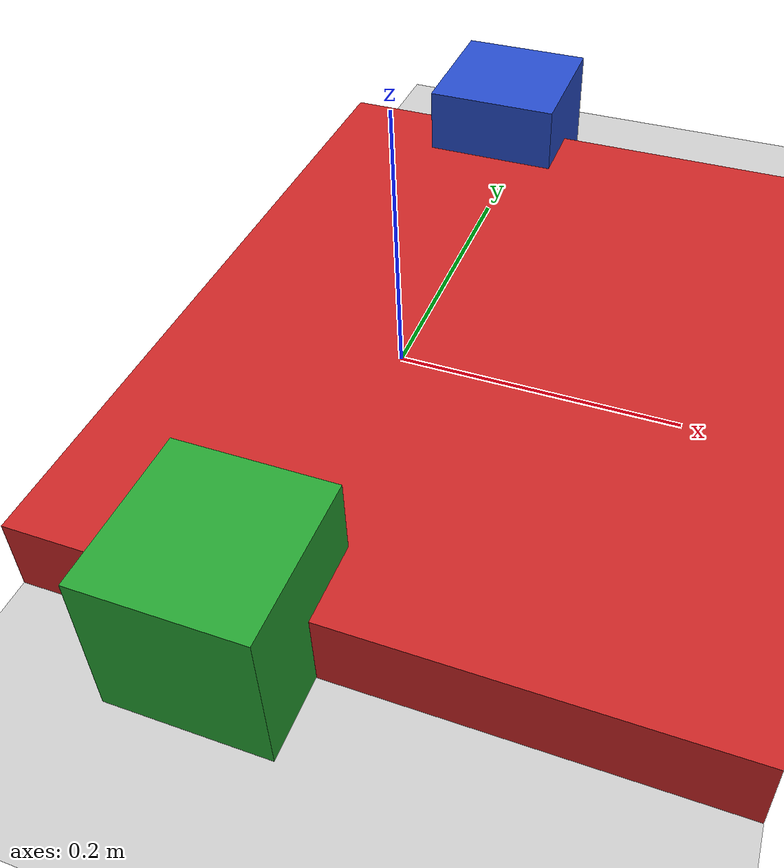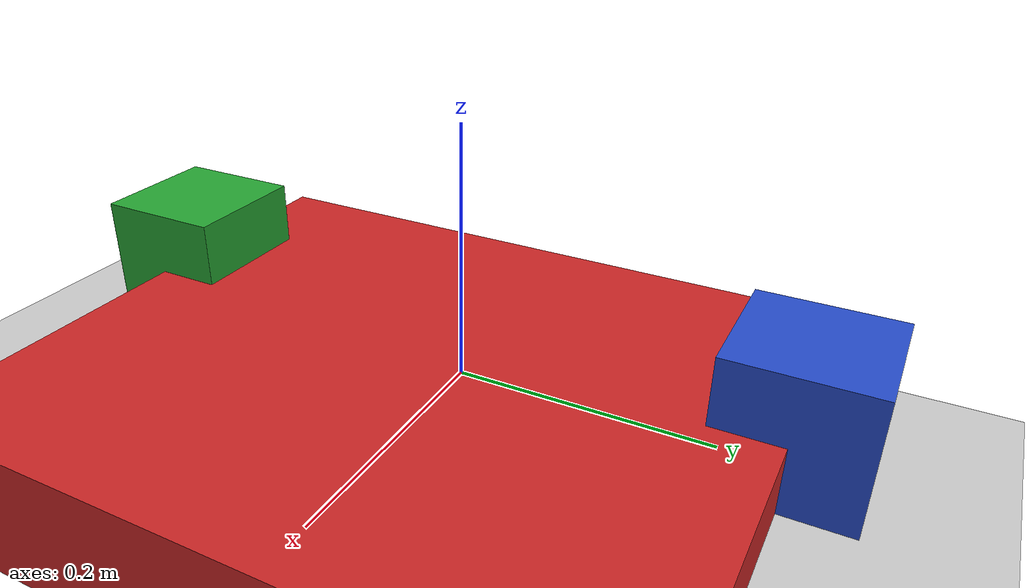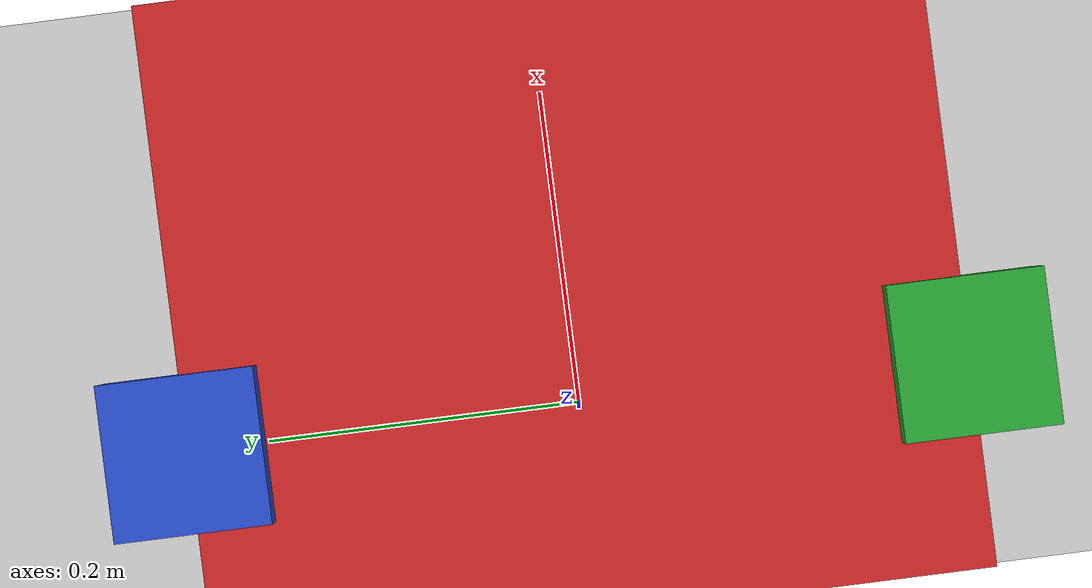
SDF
<?xml version="1.0" ?>
<sdf version="1.6">
  <world name="conveyor_world">
    <!-- A simple ground plane -->
    <include>
      <uri>model://ground_plane</uri>
    </include>
    <!-- A simple sun -->
    <include>
      <uri>model://sun</uri>
    </include>

    <!-- Conveyor belt -->
    <model name="conveyor_belt">
      <pose>0 0 0 0 0 0</pose>
      <static>1</static>
      <link name="belt_link">
        <collision name="collision">
          <geometry>
            <box>
              <size>2 0.5 0.1</size>
            </box>
          </geometry>
        </collision>
        <visual name="visual">
          <geometry>
            <box>
              <size>2 0.5 0.1</size>
            </box>
          </geometry>
          <material>
            <script>
              <uri>file://media/materials/scripts/gazebo.material</uri>
              <name>Gazebo/Red</name>
            </script>
          </material>
        </visual>
      </link>
    </model>

    <!-- Objects on the conveyor belt -->
    <model name="box1">
      <pose>0 0.25 0.05 0 0 0</pose>
      <link name="link">
        <collision name="collision">
          <geometry>
            <box>
              <size>0.1 0.1 0.1</size>
            </box>
          </geometry>
        </collision>
        <visual name="visual">
          <geometry>
            <box>
              <size>0.1 0.1 0.1</size>
            </box>
          </geometry>
          <material>
            <script>
              <uri>file://media/materials/scripts/gazebo.material</uri>
              <name>Gazebo/Blue</name>
            </script>
          </material>
        </visual>
      </link>
    </model>

    <model name="box2">
      <pose>0 -0.25 0.05 0 0 0</pose>
      <link name="link">
        <collision name="collision">
          <geometry>
            <box>
              <size>0.1 0.1 0.1</size>
            </box>
          </geometry>
        </collision>
        <visual name="visual">
          <geometry>
            <box>
              <size>0.1 0.1 0.1</size>
            </box>
          </geometry>
          <material>
            <script>
              <uri>file://media/materials/scripts/gazebo.material</uri>
              <name>Gazebo/Green</name>
            </script>
          </material>
        </visual>
      </link>
    </model>

  </world>
</sdf>
